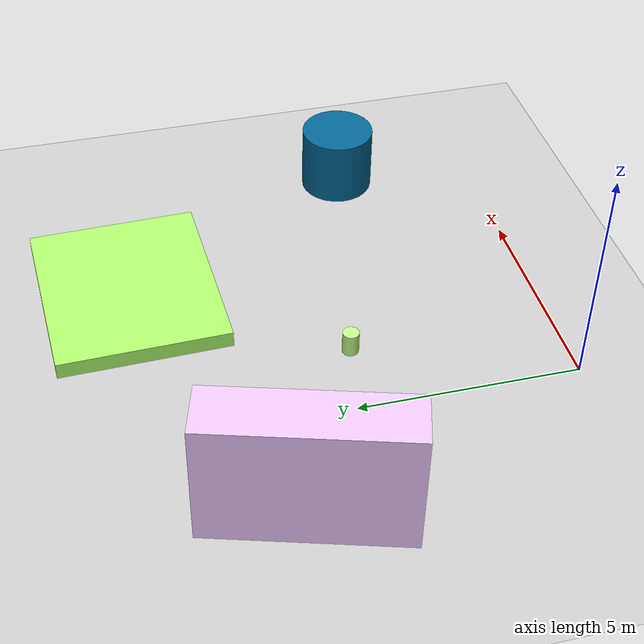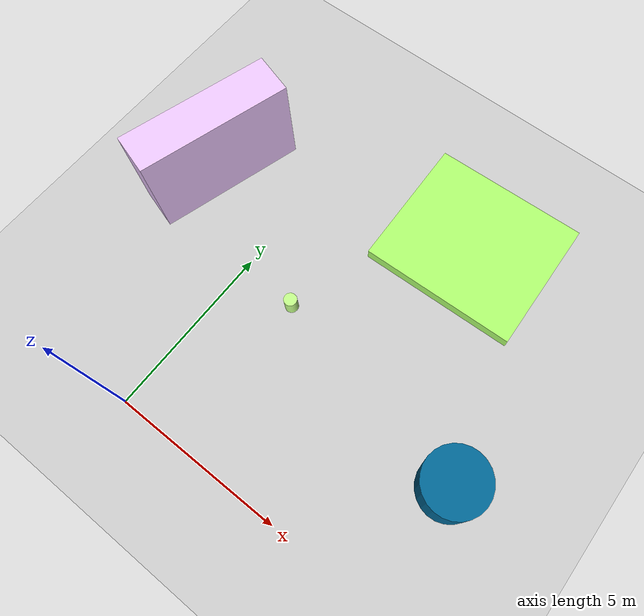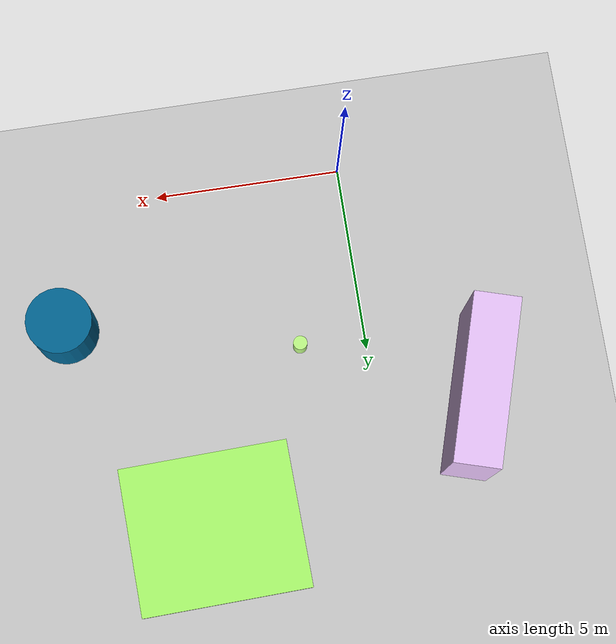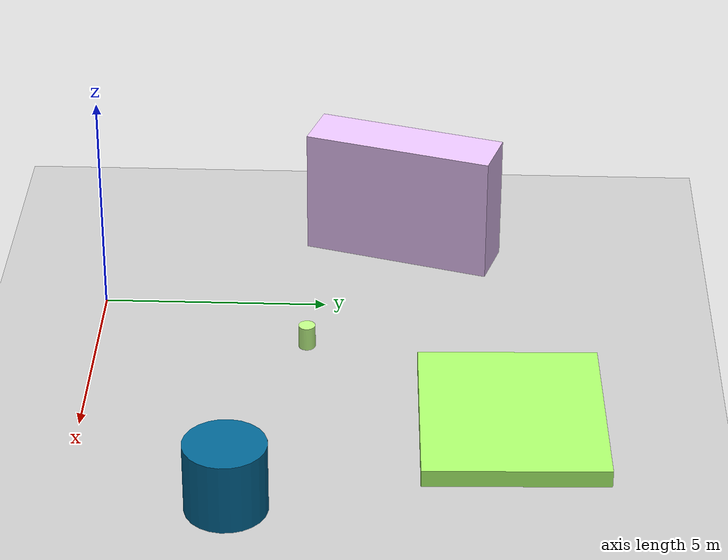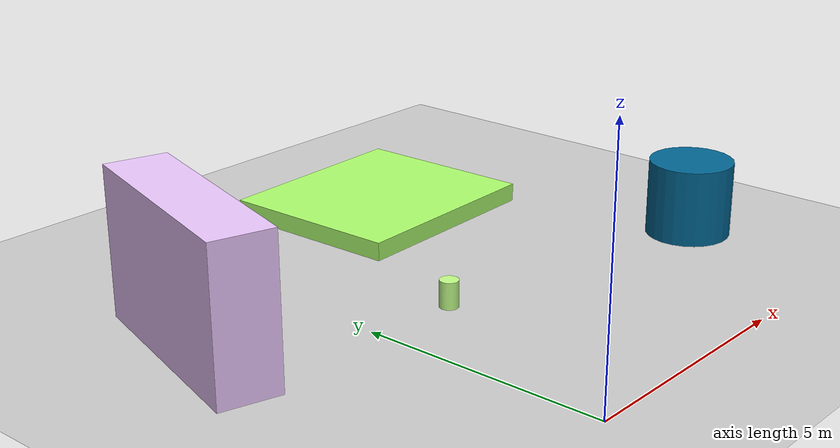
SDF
<sdf version="1.6">
 <world name="default">
  <atmosphere type="adiabatic"/>
  <wind><linear_velocity>0 0 0</linear_velocity></wind>
  <gravity>0 0 -9.8</gravity>
  <model name="dyn_box">
   <pose>4.69633 9.15598 0.191602 0 0 -3.11144</pose>
   <static>0</static>
   <allow_auto_disable>0</allow_auto_disable>
   <link name="link">
    <collision name="collision">
     <geometry><box><size>4.49716 3.92089 0.383204</size></box></geometry>
     <max_contacts>20</max_contacts>
    </collision>
    <visual name="visual">
     <geometry><box><size>4.49716 3.92089 0.383204</size></box></geometry>
     <material>
      <ambient>0.682353 1 0.431373 1</ambient>
      <diffuse>0.6823529411764706 1.0 0.43137254901960786 1</diffuse>
     </material>
     <transparency>0.0</transparency>
    </visual>
    <inertial>
     <inertia>
      <ixx>1.2689691710429087</ixx>
      <iyy>1.6656021203351337</iyy>
      <izz>2.9105585192383687</izz>
      <ixy>0.0</ixy>
      <ixz>0.0</ixz>
      <iyz>0.0</iyz>
     </inertia>
     <mass>0.9811477087688127</mass>
    </inertial>
   </link>
  </model>
  <model name="dyn_box_1">
   <pose>-2.58762 6.71927 1.46112 0 -0 2.84825</pose>
   <static>0</static>
   <allow_auto_disable>0</allow_auto_disable>
   <link name="link">
    <collision name="collision">
     <geometry><box><size>1.20877 4.35652 2.92224</size></box></geometry>
     <max_contacts>20</max_contacts>
    </collision>
    <visual name="visual">
     <geometry><box><size>1.20877 4.35652 2.92224</size></box></geometry>
     <material>
      <ambient>0.929412 0.784314 1 1</ambient>
      <diffuse>0.9294117647058824 0.7843137254901961 1.0 1</diffuse>
     </material>
     <transparency>0.0</transparency>
    </visual>
    <inertial>
     <inertia>
      <ixx>1.3387684928931305</ixx>
      <iyy>0.48652262502893356</iyy>
      <izz>0.9944125484376426</izz>
      <ixy>0.0</ixy>
      <ixz>0.0</ixz>
      <iyz>0.0</iyz>
     </inertia>
     <mass>0.583792230319581</mass>
    </inertial>
   </link>
  </model>
  <model name="static_cylinder">
   <pose>1.75397 4.66943 0.270415 0 0 -1.84937</pose>
   <static>1</static>
   <allow_auto_disable>0</allow_auto_disable>
   <link name="link">
    <collision name="collision">
     <geometry>
      <cylinder><radius>0.18735486077583396</radius><length>0.5408293280762171</length></cylinder>
     </geometry>
     <max_contacts>20</max_contacts>
    </collision>
    <visual name="visual">
     <geometry>
      <cylinder><radius>0.18735486077583396</radius><length>0.5408293280762171</length></cylinder>
     </geometry>
     <material>
      <ambient>0.760784 1 0.537255 1</ambient>
      <diffuse>0.7607843137254902 1.0 0.5372549019607843 1</diffuse>
     </material>
     <transparency>0.0</transparency>
    </visual>
   </link>
  </model>
  <model name="static_cylinder_1">
   <pose>7.88989 3.34746 0.783634 0 0 -2.94523</pose>
   <static>1</static>
   <allow_auto_disable>0</allow_auto_disable>
   <link name="link">
    <collision name="collision">
     <geometry><cylinder><radius>0.8661159834892538</radius><length>1.56726837582325</length></cylinder></geometry>
     <max_contacts>20</max_contacts>
    </collision>
    <visual name="visual">
     <geometry><cylinder><radius>0.8661159834892538</radius><length>1.56726837582325</length></cylinder></geometry>
     <material>
      <ambient>0.00392157 0.403922 0.584314 1</ambient>
      <diffuse>0.00392156862745098 0.403921568627451 0.5843137254901961 1</diffuse>
     </material>
     <transparency>0.0</transparency>
    </visual>
   </link>
  </model>
  <include><uri>model://ground_plane</uri><name>ground_plane</name><static>1</static></include>
  <include><uri>model://sun</uri></include>
  <physics name="default_physics" default="0" type="ode">
   <gravity>0 0 -9.8066</gravity>
   <ode>
    <solver>
     <type>quick</type>
     <iters>10</iters>
     <sor>1.3</sor>
     <use_dynamic_moi_rescaling>0</use_dynamic_moi_rescaling>
    </solver>
    <constraints>
     <cfm>0</cfm>
     <erp>0.2</erp>
     <contact_max_correcting_vel>100</contact_max_correcting_vel>
     <contact_surface_layer>0.001</contact_surface_layer>
    </constraints>
   </ode>
   <max_step_size>0.004</max_step_size>
   <real_time_factor>1</real_time_factor>
   <real_time_update_rate>250</real_time_update_rate>
   <magnetic_field>6.0e-6 2.3e-5 -4.2e-5</magnetic_field>
  </physics>
  <scene>
   <ambient>0.8 0.8 0.8 1</ambient>
   <background>0.8 0.9 1 1</background>
   <shadows>false</shadows>
   <grid>false</grid>
   <origin_visual>false</origin_visual>
  </scene>
 </world>
</sdf>
